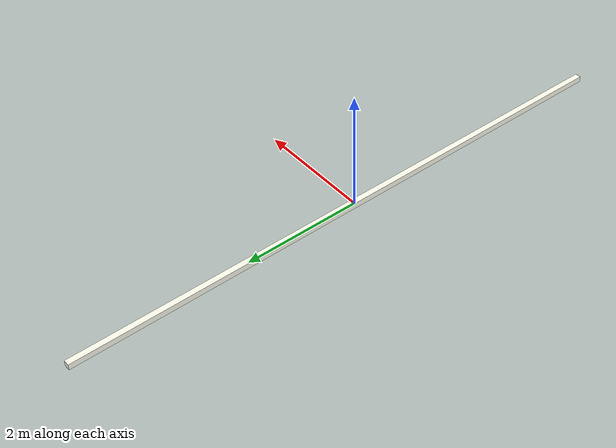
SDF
<?xml version="1.0" ?>
<sdf version="1.7">

    <model name='wall_small_short'>
        <static>true</static>
        <pose>0 0 0 0 0 0</pose><!--pose relative to the world-->
        <link name='box'>
            <visual name='visual'>
                <geometry>
                    <box>
                        <size>0.1 10.0 0.1</size>
                    </box>
                </geometry>
                <!--let's add color to our link-->
                <material>
                    <ambient>1.0 1.0 0.94 1</ambient>
                    <diffuse>1.0 1.0 0.94 1</diffuse>
                    <specular>1.0 1.0 0.94 1</specular>
                </material>
            </visual>
            <collision name='collision'>
                <geometry>
                    <box>
                        <size>0.1 10.0 0.1</size>
                    </box>
                </geometry>
            </collision>
        </link>
    </model>

</sdf>
